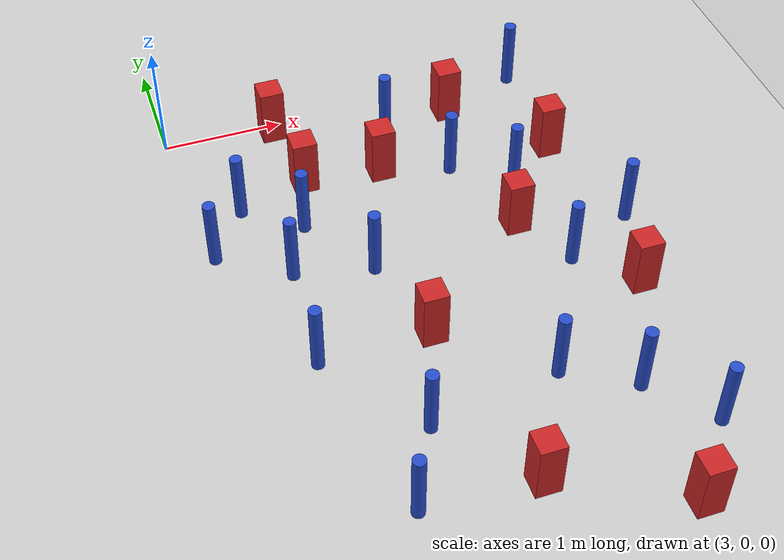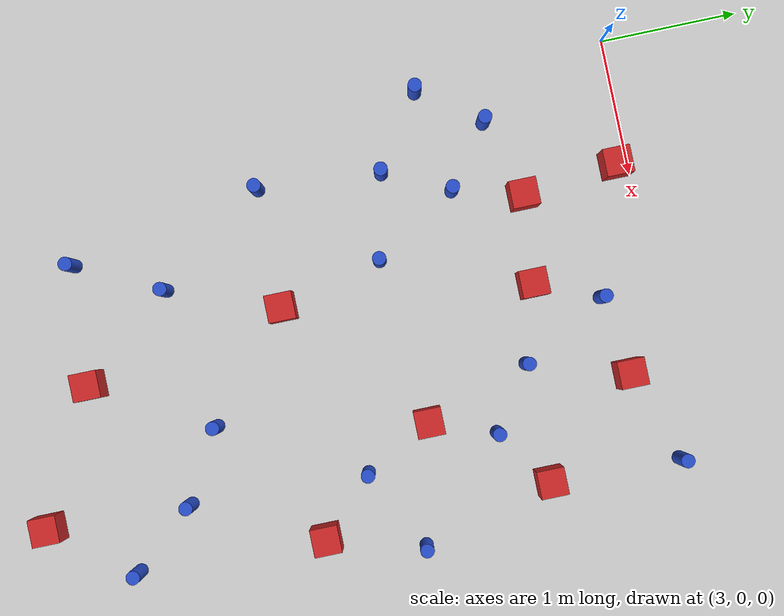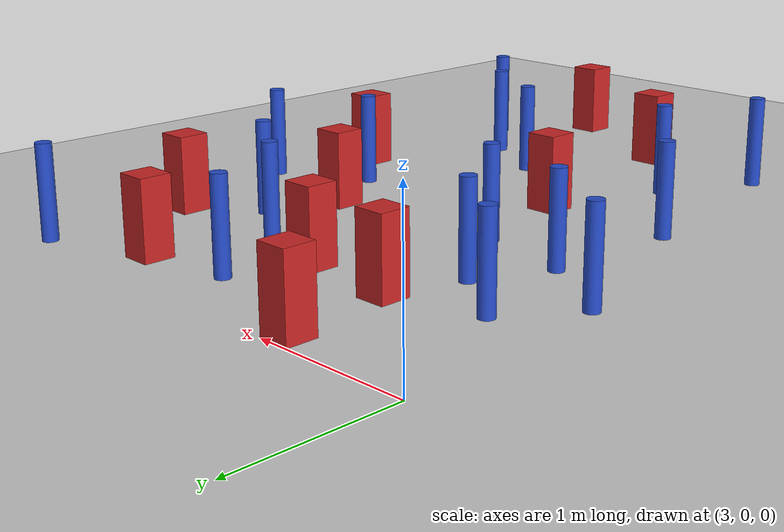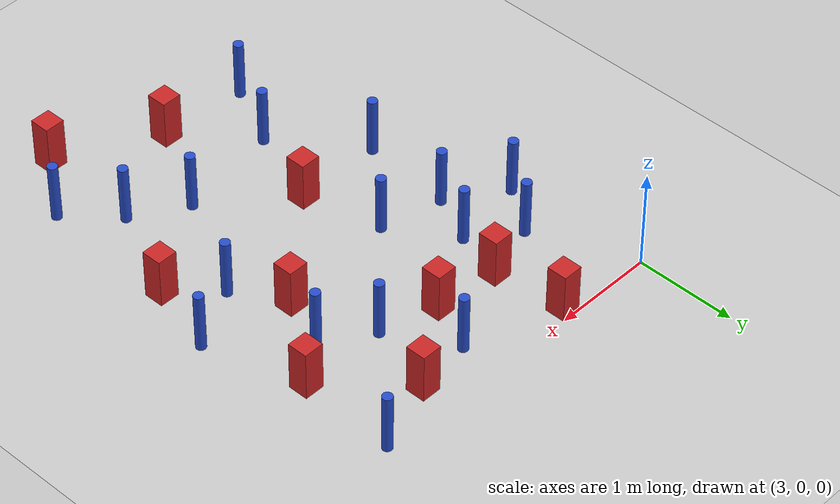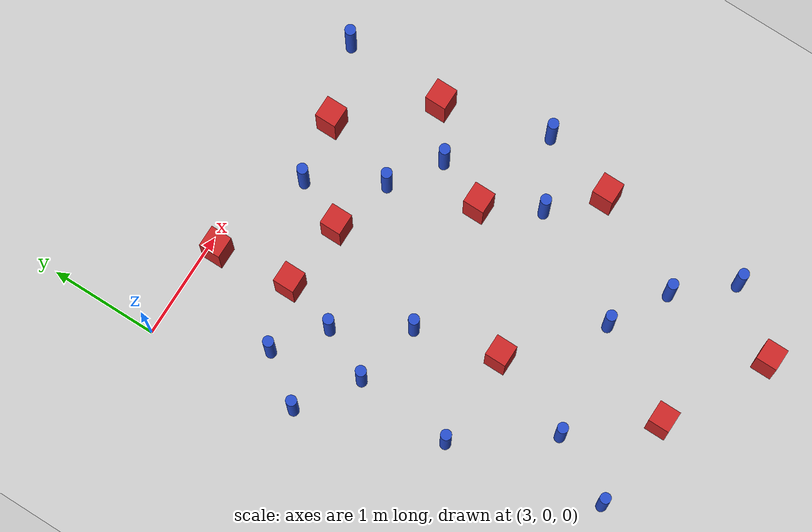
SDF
<sdf version="1.6">
 <world name="default">
  <model name="ground_plane">
   <static>1</static>
   <link name="link">
    <collision name="collision">
     <geometry><plane><normal>0 0 1</normal><size>100 100</size></plane></geometry>
     <surface><friction><ode><mu>100</mu><mu2>50</mu2></ode></friction></surface>
    </collision>
    <visual name="visual">
     <cast_shadows>0</cast_shadows>
     <geometry><plane><normal>0 0 1</normal><size>100 100</size></plane></geometry>
     <material>
      <ambient>1.0 1.0 1.0 1.0</ambient>
      <diffuse>0.8 0.8 0.8 1.0</diffuse>
      <specular>0.01 0.01 0.01 1.000000</specular>
     </material>
    </visual>
   </link>
  </model>
  <model name="pole_obstacle41">
   <static>true</static>
   <pose>3.5569197689 -2.68449451815 -3.09024884793e-07 -7.19054271912e-07 -2.11315075144e-07 -1.93935509271e-07</pose>
   <link name="link">
    <pose>0 0 0.3 0 -0 0</pose>
    <inertial>
     <mass>1</mass>
     <inertia><ixx>0.145833</ixx><ixy>0</ixy><ixz>0</ixz><iyy>0.145833</iyy><iyz>0</iyz><izz>0.125</izz></inertia>
    </inertial>
    <collision name="collision">
     <geometry><cylinder><radius>0.05</radius><length>.6</length></cylinder></geometry>
    </collision>
    <visual name="visual">
     <geometry><cylinder><radius>0.05</radius><length>.6</length></cylinder></geometry>
     <material>
      <script><name>Gazebo/Blue</name><uri>file://media/materials/scripts/gazebo.material</uri></script>
     </material>
    </visual>
   </link>
  </model>
  <model name="pole_obstacle46">
   <static>true</static>
   <pose>5.18515565734 -3.32202096976 -3.09024884793e-07 -7.19054271912e-07 -2.11315075144e-07 -1.93935509269e-07</pose>
   <link name="link">
    <pose>0 0 0.3 0 -0 0</pose>
    <inertial>
     <mass>1</mass>
     <inertia><ixx>0.145833</ixx><ixy>0</ixy><ixz>0</ixz><iyy>0.145833</iyy><iyz>0</iyz><izz>0.125</izz></inertia>
    </inertial>
    <collision name="collision">
     <geometry><cylinder><radius>0.05</radius><length>.6</length></cylinder></geometry>
    </collision>
    <visual name="visual">
     <geometry><cylinder><radius>0.05</radius><length>.6</length></cylinder></geometry>
     <material>
      <script><name>Gazebo/Blue</name><uri>file://media/materials/scripts/gazebo.material</uri></script>
     </material>
    </visual>
   </link>
  </model>
  <model name="pole_obstacle47">
   <static>true</static>
   <pose>5.19799344406 -1.02992889069 -3.09024884793e-07 -7.19054271912e-07 -2.11315075127e-07 -1.93935509262e-07</pose>
   <link name="link">
    <pose>0 0 0.3 0 -0 0</pose>
    <inertial>
     <mass>1</mass>
     <inertia><ixx>0.145833</ixx><ixy>0</ixy><ixz>0</ixz><iyy>0.145833</iyy><iyz>0</iyz><izz>0.125</izz></inertia>
    </inertial>
    <collision name="collision">
     <geometry><cylinder><radius>0.05</radius><length>.6</length></cylinder></geometry>
    </collision>
    <visual name="visual">
     <geometry><cylinder><radius>0.05</radius><length>.6</length></cylinder></geometry>
     <material>
      <script><name>Gazebo/Blue</name><uri>file://media/materials/scripts/gazebo.material</uri></script>
     </material>
    </visual>
   </link>
  </model>
  <model name="pole_obstacle49">
   <static>true</static>
   <pose>4.24682617966 -1.91908120827 -3.09024884793e-07 -7.19054271912e-07 -2.11315075124e-07 -1.93935509261e-07</pose>
   <link name="link">
    <pose>0 0 0.3 0 -0 0</pose>
    <inertial>
     <mass>1</mass>
     <inertia><ixx>0.145833</ixx><ixy>0</ixy><ixz>0</ixz><iyy>0.145833</iyy><iyz>0</iyz><izz>0.125</izz></inertia>
    </inertial>
    <collision name="collision">
     <geometry><cylinder><radius>0.05</radius><length>.6</length></cylinder></geometry>
    </collision>
    <visual name="visual">
     <geometry><cylinder><radius>0.05</radius><length>.6</length></cylinder></geometry>
     <material>
      <script><name>Gazebo/Blue</name><uri>file://media/materials/scripts/gazebo.material</uri></script>
     </material>
    </visual>
   </link>
  </model>
  <model name="square_post_obstacle47">
   <static>true</static>
   <pose>4.70579254479 -4.16038542556 -4.36207812815e-07 3.75137919937e-06 9.77721102514e-07 2.47381364184e-05</pose>
   <link name="link">
    <pose>0 0 0.25 0 -0 0</pose>
    <inertial>
     <mass>100</mass>
     <inertia>
      <ixx>0.166667</ixx>
      <ixy>0</ixy>
      <ixz>0</ixz>
      <iyy>0.166667</iyy>
      <iyz>0</iyz>
      <izz>0.166667</izz>
     </inertia>
    </inertial>
    <collision name="collision"><geometry><box><size>.2 .2 .5</size></box></geometry></collision>
    <visual name="visual">
     <geometry><box><size>.2 .2 .5</size></box></geometry>
     <material>
      <script><name>Gazebo/Red</name><uri>file://media/materials/scripts/gazebo.material</uri></script>
     </material>
    </visual>
   </link>
  </model>
  <model name="pole_obstacle63">
   <static>true</static>
   <pose>3.4145873288 -0.976649345499 -3.09024884793e-07 -7.19054271912e-07 -2.11315075118e-07 -1.93935509258e-07</pose>
   <link name="link">
    <pose>0 0 0.3 0 -0 0</pose>
    <inertial>
     <mass>1</mass>
     <inertia><ixx>0.145833</ixx><ixy>0</ixy><ixz>0</ixz><iyy>0.145833</iyy><iyz>0</iyz><izz>0.125</izz></inertia>
    </inertial>
    <collision name="collision">
     <geometry><cylinder><radius>0.05</radius><length>.6</length></cylinder></geometry>
    </collision>
    <visual name="visual">
     <geometry><cylinder><radius>0.05</radius><length>.6</length></cylinder></geometry>
     <material>
      <script><name>Gazebo/Blue</name><uri>file://media/materials/scripts/gazebo.material</uri></script>
     </material>
    </visual>
   </link>
  </model>
  <model name="square_post_obstacle50">
   <static>true</static>
   <pose>5.65852767724 -4.65467436138 -4.36207812815e-07 3.75137919937e-06 9.77721102514e-07 2.47381364184e-05</pose>
   <link name="link">
    <pose>0 0 0.25 0 -0 0</pose>
    <inertial>
     <mass>100</mass>
     <inertia>
      <ixx>0.166667</ixx>
      <ixy>0</ixy>
      <ixz>0</ixz>
      <iyy>0.166667</iyy>
      <iyz>0</iyz>
      <izz>0.166667</izz>
     </inertia>
    </inertial>
    <collision name="collision"><geometry><box><size>.2 .2 .5</size></box></geometry></collision>
    <visual name="visual">
     <geometry><box><size>.2 .2 .5</size></box></geometry>
     <material>
      <script><name>Gazebo/Red</name><uri>file://media/materials/scripts/gazebo.material</uri></script>
     </material>
    </visual>
   </link>
  </model>
  <model name="square_post_obstacle56">
   <static>true</static>
   <pose>5.41629758318 -0.316270551708 -4.36207812815e-07 3.75137919937e-06 9.77721102514e-07 2.47381364184e-05</pose>
   <link name="link">
    <pose>0 0 0.25 0 -0 0</pose>
    <inertial>
     <mass>100</mass>
     <inertia>
      <ixx>0.166667</ixx>
      <ixy>0</ixy>
      <ixz>0</ixz>
      <iyy>0.166667</iyy>
      <iyz>0</iyz>
      <izz>0.166667</izz>
     </inertia>
    </inertial>
    <collision name="collision"><geometry><box><size>.2 .2 .5</size></box></geometry></collision>
    <visual name="visual">
     <geometry><box><size>.2 .2 .5</size></box></geometry>
     <material>
      <script><name>Gazebo/Red</name><uri>file://media/materials/scripts/gazebo.material</uri></script>
     </material>
    </visual>
   </link>
  </model>
  <model name="pole_obstacle77">
   <static>true</static>
   <pose>6.34259070733 -2.00874868817 -3.09024884793e-07 -7.19054271912e-07 -2.11315075132e-07 -1.93935509263e-07</pose>
   <link name="link">
    <pose>0 0 0.3 0 -0 0</pose>
    <inertial>
     <mass>1</mass>
     <inertia><ixx>0.145833</ixx><ixy>0</ixy><ixz>0</ixz><iyy>0.145833</iyy><iyz>0</iyz><izz>0.125</izz></inertia>
    </inertial>
    <collision name="collision">
     <geometry><cylinder><radius>0.05</radius><length>.6</length></cylinder></geometry>
    </collision>
    <visual name="visual">
     <geometry><cylinder><radius>0.05</radius><length>.6</length></cylinder></geometry>
     <material>
      <script><name>Gazebo/Blue</name><uri>file://media/materials/scripts/gazebo.material</uri></script>
     </material>
    </visual>
   </link>
  </model>
  <model name="square_post_obstacle72">
   <static>true</static>
   <pose>6.13785445286 -2.70367544326 -4.36207812815e-07 3.75137919937e-06 9.77721102514e-07 2.47381364184e-05</pose>
   <link name="link">
    <pose>0 0 0.25 0 -0 0</pose>
    <inertial>
     <mass>100</mass>
     <inertia>
      <ixx>0.166667</ixx>
      <ixy>0</ixy>
      <ixz>0</ixz>
      <iyy>0.166667</iyy>
      <iyz>0</iyz>
      <izz>0.166667</izz>
     </inertia>
    </inertial>
    <collision name="collision"><geometry><box><size>.2 .2 .5</size></box></geometry></collision>
    <visual name="visual">
     <geometry><box><size>.2 .2 .5</size></box></geometry>
     <material>
      <script><name>Gazebo/Red</name><uri>file://media/materials/scripts/gazebo.material</uri></script>
     </material>
    </visual>
   </link>
  </model>
  <model name="square_post_obstacle101">
   <static>true</static>
   <pose>3.90916366934 -0.104227812113 -4.36207812815e-07 3.75137919937e-06 9.77721102514e-07 2.47381364184e-05</pose>
   <link name="link">
    <pose>0 0 0.25 0 -0 0</pose>
    <inertial>
     <mass>100</mass>
     <inertia>
      <ixx>0.166667</ixx>
      <ixy>0</ixy>
      <ixz>0</ixz>
      <iyy>0.166667</iyy>
      <iyz>0</iyz>
      <izz>0.166667</izz>
     </inertia>
    </inertial>
    <collision name="collision"><geometry><box><size>.2 .2 .5</size></box></geometry></collision>
    <visual name="visual">
     <geometry><box><size>.2 .2 .5</size></box></geometry>
     <material>
      <script><name>Gazebo/Red</name><uri>file://media/materials/scripts/gazebo.material</uri></script>
     </material>
    </visual>
   </link>
  </model>
  <model name="square_post_obstacle120">
   <static>true</static>
   <pose>3.99590210295 -0.807621451331 -4.36207812815e-07 3.75137919937e-06 9.77721102514e-07 2.47381364184e-05</pose>
   <link name="link">
    <pose>0 0 0.25 0 -0 0</pose>
    <inertial>
     <mass>100</mass>
     <inertia>
      <ixx>0.166667</ixx>
      <ixy>0</ixy>
      <ixz>0</ixz>
      <iyy>0.166667</iyy>
      <iyz>0</iyz>
      <izz>0.166667</izz>
     </inertia>
    </inertial>
    <collision name="collision"><geometry><box><size>.2 .2 .5</size></box></geometry></collision>
    <visual name="visual">
     <geometry><box><size>.2 .2 .5</size></box></geometry>
     <material>
      <script><name>Gazebo/Red</name><uri>file://media/materials/scripts/gazebo.material</uri></script>
     </material>
    </visual>
   </link>
  </model>
  <model name="pole_obstacle128">
   <static>true</static>
   <pose>5.7409687875 -2.31245963606 -3.09024884793e-07 -7.19054271912e-07 -2.11315075144e-07 -1.93935509269e-07</pose>
   <link name="link">
    <pose>0 0 0.3 0 -0 0</pose>
    <inertial>
     <mass>1</mass>
     <inertia><ixx>0.145833</ixx><ixy>0</ixy><ixz>0</ixz><iyy>0.145833</iyy><iyz>0</iyz><izz>0.125</izz></inertia>
    </inertial>
    <collision name="collision">
     <geometry><cylinder><radius>0.05</radius><length>.6</length></cylinder></geometry>
    </collision>
    <visual name="visual">
     <geometry><cylinder><radius>0.05</radius><length>.6</length></cylinder></geometry>
     <material>
      <script><name>Gazebo/Blue</name><uri>file://media/materials/scripts/gazebo.material</uri></script>
     </material>
    </visual>
   </link>
  </model>
  <model name="square_post_obstacle131">
   <static>true</static>
   <pose>4.43698444354 -2.68411102263 -4.36207812815e-07 3.75137919937e-06 9.77721102514e-07 2.47381364184e-05</pose>
   <link name="link">
    <pose>0 0 0.25 0 -0 0</pose>
    <inertial>
     <mass>100</mass>
     <inertia>
      <ixx>0.166667</ixx>
      <ixy>0</ixy>
      <ixz>0</ixz>
      <iyy>0.166667</iyy>
      <iyz>0</iyz>
      <izz>0.166667</izz>
     </inertia>
    </inertial>
    <collision name="collision"><geometry><box><size>.2 .2 .5</size></box></geometry></collision>
    <visual name="visual">
     <geometry><box><size>.2 .2 .5</size></box></geometry>
     <material>
      <script><name>Gazebo/Red</name><uri>file://media/materials/scripts/gazebo.material</uri></script>
     </material>
    </visual>
   </link>
  </model>
  <model name="pole_obstacle136">
   <static>true</static>
   <pose>4.8364935643 -0.397707945928 -3.09024884793e-07 -7.19054271912e-07 -2.11315075138e-07 -1.93935509266e-07</pose>
   <link name="link">
    <pose>0 0 0.3 0 -0 0</pose>
    <inertial>
     <mass>1</mass>
     <inertia><ixx>0.145833</ixx><ixy>0</ixy><ixz>0</ixz><iyy>0.145833</iyy><iyz>0</iyz><izz>0.125</izz></inertia>
    </inertial>
    <collision name="collision">
     <geometry><cylinder><radius>0.05</radius><length>.6</length></cylinder></geometry>
    </collision>
    <visual name="visual">
     <geometry><cylinder><radius>0.05</radius><length>.6</length></cylinder></geometry>
     <material>
      <script><name>Gazebo/Blue</name><uri>file://media/materials/scripts/gazebo.material</uri></script>
     </material>
    </visual>
   </link>
  </model>
  <model name="square_post_obstacle133">
   <static>true</static>
   <pose>6.06480743797 -1.03677569847 -4.36207812815e-07 3.75137919937e-06 9.77721102514e-07 2.47381364184e-05</pose>
   <link name="link">
    <pose>0 0 0.25 0 -0 0</pose>
    <inertial>
     <mass>100</mass>
     <inertia>
      <ixx>0.166667</ixx>
      <ixy>0</ixy>
      <ixz>0</ixz>
      <iyy>0.166667</iyy>
      <iyz>0</iyz>
      <izz>0.166667</izz>
     </inertia>
    </inertial>
    <collision name="collision"><geometry><box><size>.2 .2 .5</size></box></geometry></collision>
    <visual name="visual">
     <geometry><box><size>.2 .2 .5</size></box></geometry>
     <material>
      <script><name>Gazebo/Red</name><uri>file://media/materials/scripts/gazebo.material</uri></script>
     </material>
    </visual>
   </link>
  </model>
  <model name="pole_obstacle137">
   <static>true</static>
   <pose>3.85360677437 -1.30250942269 -3.09024884793e-07 -7.19054271912e-07 -2.11315075122e-07 -1.93935509259e-07</pose>
   <link name="link">
    <pose>0 0 0.3 0 -0 0</pose>
    <inertial>
     <mass>1</mass>
     <inertia><ixx>0.145833</ixx><ixy>0</ixy><ixz>0</ixz><iyy>0.145833</iyy><iyz>0</iyz><izz>0.125</izz></inertia>
    </inertial>
    <collision name="collision">
     <geometry><cylinder><radius>0.05</radius><length>.6</length></cylinder></geometry>
    </collision>
    <visual name="visual">
     <geometry><cylinder><radius>0.05</radius><length>.6</length></cylinder></geometry>
     <material>
      <script><name>Gazebo/Blue</name><uri>file://media/materials/scripts/gazebo.material</uri></script>
     </material>
    </visual>
   </link>
  </model>
  <model name="pole_obstacle146">
   <static>true</static>
   <pose>6.1024087469 -4.08525546852 -3.09024884793e-07 -7.19054271911e-07 -2.1131507516e-07 -1.93935509277e-07</pose>
   <link name="link">
    <pose>0 0 0.3 0 -0 0</pose>
    <inertial>
     <mass>1</mass>
     <inertia><ixx>0.145833</ixx><ixy>0</ixy><ixz>0</ixz><iyy>0.145833</iyy><iyz>0</iyz><izz>0.125</izz></inertia>
    </inertial>
    <collision name="collision">
     <geometry><cylinder><radius>0.05</radius><length>.6</length></cylinder></geometry>
    </collision>
    <visual name="visual">
     <geometry><cylinder><radius>0.05</radius><length>.6</length></cylinder></geometry>
     <material>
      <script><name>Gazebo/Blue</name><uri>file://media/materials/scripts/gazebo.material</uri></script>
     </material>
    </visual>
   </link>
  </model>
  <model name="pole_obstacle148">
   <static>true</static>
   <pose>3.09377680978 -1.42020711301 -3.09024884793e-07 -7.19054271912e-07 -2.11315075122e-07 -1.93935509259e-07</pose>
   <link name="link">
    <pose>0 0 0.3 0 -0 0</pose>
    <inertial>
     <mass>1</mass>
     <inertia><ixx>0.145833</ixx><ixy>0</ixy><ixz>0</ixz><iyy>0.145833</iyy><iyz>0</iyz><izz>0.125</izz></inertia>
    </inertial>
    <collision name="collision">
     <geometry><cylinder><radius>0.05</radius><length>.6</length></cylinder></geometry>
    </collision>
    <visual name="visual">
     <geometry><cylinder><radius>0.05</radius><length>.6</length></cylinder></geometry>
     <material>
      <script><name>Gazebo/Blue</name><uri>file://media/materials/scripts/gazebo.material</uri></script>
     </material>
    </visual>
   </link>
  </model>
  <model name="pole_obstacle157">
   <static>true</static>
   <pose>3.62664898456 -1.77932071349 -3.09024884793e-07 -7.19054271912e-07 -2.11315075122e-07 -1.93935509259e-07</pose>
   <link name="link">
    <pose>0 0 0.3 0 -0 0</pose>
    <inertial>
     <mass>1</mass>
     <inertia><ixx>0.145833</ixx><ixy>0</ixy><ixz>0</ixz><iyy>0.145833</iyy><iyz>0</iyz><izz>0.125</izz></inertia>
    </inertial>
    <collision name="collision">
     <geometry><cylinder><radius>0.05</radius><length>.6</length></cylinder></geometry>
    </collision>
    <visual name="visual">
     <geometry><cylinder><radius>0.05</radius><length>.6</length></cylinder></geometry>
     <material>
      <script><name>Gazebo/Blue</name><uri>file://media/materials/scripts/gazebo.material</uri></script>
     </material>
    </visual>
   </link>
  </model>
  <model name="pole_obstacle158">
   <static>true</static>
   <pose>4.1411113587 -3.48642345864 -3.09024884793e-07 -7.19054271912e-07 -2.11315075144e-07 -1.93935509269e-07</pose>
   <link name="link">
    <pose>0 0 0.3 0 -0 0</pose>
    <inertial>
     <mass>1</mass>
     <inertia><ixx>0.145833</ixx><ixy>0</ixy><ixz>0</ixz><iyy>0.145833</iyy><iyz>0</iyz><izz>0.125</izz></inertia>
    </inertial>
    <collision name="collision">
     <geometry><cylinder><radius>0.05</radius><length>.6</length></cylinder></geometry>
    </collision>
    <visual name="visual">
     <geometry><cylinder><radius>0.05</radius><length>.6</length></cylinder></geometry>
     <material>
      <script><name>Gazebo/Blue</name><uri>file://media/materials/scripts/gazebo.material</uri></script>
     </material>
    </visual>
   </link>
  </model>
  <model name="pole_obstacle167">
   <static>true</static>
   <pose>6.09930372774 -0.0741186775689 -3.09024884793e-07 -7.19054271912e-07 -2.11315075117e-07 -1.93935509257e-07</pose>
   <link name="link">
    <pose>0 0 0.3 0 -0 0</pose>
    <inertial>
     <mass>1</mass>
     <inertia><ixx>0.145833</ixx><ixy>0</ixy><ixz>0</ixz><iyy>0.145833</iyy><iyz>0</iyz><izz>0.125</izz></inertia>
    </inertial>
    <collision name="collision">
     <geometry><cylinder><radius>0.05</radius><length>.6</length></cylinder></geometry>
    </collision>
    <visual name="visual">
     <geometry><cylinder><radius>0.05</radius><length>.6</length></cylinder></geometry>
     <material>
      <script><name>Gazebo/Blue</name><uri>file://media/materials/scripts/gazebo.material</uri></script>
     </material>
    </visual>
   </link>
  </model>
  <model name="pole_obstacle173">
   <static>true</static>
   <pose>3.82872090439 -4.10677792137 -3.09024884793e-07 -7.19054271912e-07 -2.11315075134e-07 -1.93935509266e-07</pose>
   <link name="link">
    <pose>0 0 0.3 0 -0 0</pose>
    <inertial>
     <mass>1</mass>
     <inertia><ixx>0.145833</ixx><ixy>0</ixy><ixz>0</ixz><iyy>0.145833</iyy><iyz>0</iyz><izz>0.125</izz></inertia>
    </inertial>
    <collision name="collision">
     <geometry><cylinder><radius>0.05</radius><length>.6</length></cylinder></geometry>
    </collision>
    <visual name="visual">
     <geometry><cylinder><radius>0.05</radius><length>.6</length></cylinder></geometry>
     <material>
      <script><name>Gazebo/Blue</name><uri>file://media/materials/scripts/gazebo.material</uri></script>
     </material>
    </visual>
   </link>
  </model>
  <model name="square_post_obstacle183">
   <static>true</static>
   <pose>5.46566088187 -1.80969496166 -4.36207812815e-07 3.75137919937e-06 9.77721102514e-07 2.47381364184e-05</pose>
   <link name="link">
    <pose>0 0 0.25 0 -0 0</pose>
    <inertial>
     <mass>100</mass>
     <inertia>
      <ixx>0.166667</ixx>
      <ixy>0</ixy>
      <ixz>0</ixz>
      <iyy>0.166667</iyy>
      <iyz>0</iyz>
      <izz>0.166667</izz>
     </inertia>
    </inertial>
    <collision name="collision"><geometry><box><size>.2 .2 .5</size></box></geometry></collision>
    <visual name="visual">
     <geometry><box><size>.2 .2 .5</size></box></geometry>
     <material>
      <script><name>Gazebo/Red</name><uri>file://media/materials/scripts/gazebo.material</uri></script>
     </material>
    </visual>
   </link>
  </model>
  <model name="pole_obstacle204">
   <static>true</static>
   <pose>5.70158339418 -3.62208123721 -3.09024884793e-07 -7.19054271912e-07 -2.11315075144e-07 -1.93935509269e-07</pose>
   <link name="link">
    <pose>0 0 0.3 0 -0 0</pose>
    <inertial>
     <mass>1</mass>
     <inertia><ixx>0.145833</ixx><ixy>0</ixy><ixz>0</ixz><iyy>0.145833</iyy><iyz>0</iyz><izz>0.125</izz></inertia>
    </inertial>
    <collision name="collision">
     <geometry><cylinder><radius>0.05</radius><length>.6</length></cylinder></geometry>
    </collision>
    <visual name="visual">
     <geometry><cylinder><radius>0.05</radius><length>.6</length></cylinder></geometry>
     <material>
      <script><name>Gazebo/Blue</name><uri>file://media/materials/scripts/gazebo.material</uri></script>
     </material>
    </visual>
   </link>
  </model>
  <model name="square_post_obstacle215">
   <static>true</static>
   <pose>4.63828021039 -0.869920870211 -4.36207812815e-07 3.75137919937e-06 9.77721102514e-07 2.47381364184e-05</pose>
   <link name="link">
    <pose>0 0 0.25 0 -0 0</pose>
    <inertial>
     <mass>100</mass>
     <inertia>
      <ixx>0.166667</ixx>
      <ixy>0</ixy>
      <ixz>0</ixz>
      <iyy>0.166667</iyy>
      <iyz>0</iyz>
      <izz>0.166667</izz>
     </inertia>
    </inertial>
    <collision name="collision"><geometry><box><size>.2 .2 .5</size></box></geometry></collision>
    <visual name="visual">
     <geometry><box><size>.2 .2 .5</size></box></geometry>
     <material>
      <script><name>Gazebo/Red</name><uri>file://media/materials/scripts/gazebo.material</uri></script>
     </material>
    </visual>
   </link>
  </model>
  <model name="pole_obstacle213">
   <static>true</static>
   <pose>5.64551000976 -1.33811997922 -3.09024884793e-07 -7.19054271912e-07 -2.11315075124e-07 -1.93935509261e-07</pose>
   <link name="link">
    <pose>0 0 0.3 0 -0 0</pose>
    <inertial>
     <mass>1</mass>
     <inertia><ixx>0.145833</ixx><ixy>0</ixy><ixz>0</ixz><iyy>0.145833</iyy><iyz>0</iyz><izz>0.125</izz></inertia>
    </inertial>
    <collision name="collision">
     <geometry><cylinder><radius>0.05</radius><length>.6</length></cylinder></geometry>
    </collision>
    <visual name="visual">
     <geometry><cylinder><radius>0.05</radius><length>.6</length></cylinder></geometry>
     <material>
      <script><name>Gazebo/Blue</name><uri>file://media/materials/scripts/gazebo.material</uri></script>
     </material>
    </visual>
   </link>
  </model>
 </world>
</sdf>
